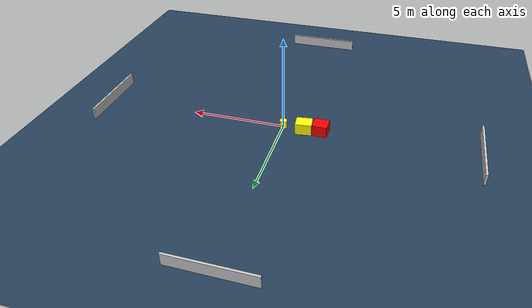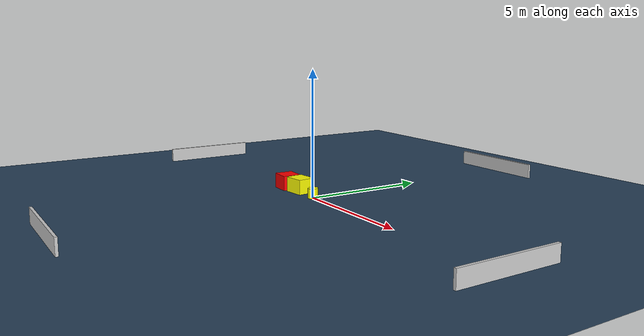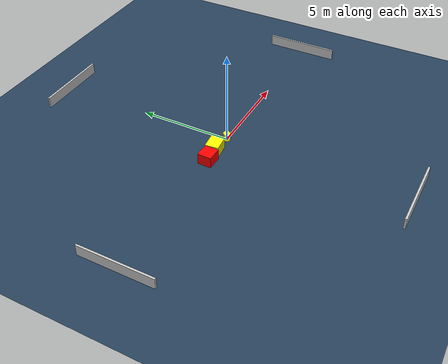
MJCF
<?xml version="1.0" ?>
<mujoco model="generated_environment">
  <option timestep="0.01" integrator="RK4" cone="elliptic"/>
  <default>
    <geom density="1"/>
  </default>
  <asset>
    <texture builtin="gradient" height="3072" name="skybox" rgb1="0.3 0.5 0.7" rgb2="0 0 0" type="skybox" width="512"/>
    <texture builtin="checker" height="300" name="groundplane" rgb1="0.2 0.3 0.4" rgb2="0.1 0.2 0.3" type="2d" width="300"/>
    <material name="groundplane" reflectance="0.2" texrepeat="5 5" texture="groundplane"/>
  </asset>
  <worldbody>
    <light dir="0 0 -1" directional="true" pos="0 0 1.5"/>
    <geom condim="3" friction="0.5 0.005 0.001" material="groundplane" name="floor" pos="0 0 0" size="0 0 0.05" type="plane"/>
    <body name="walls">
      <geom name="wall_1" condim="4" pos="-10.0 0.0 0.3" rgba="0.800000011920929 0.800000011920929 0.800000011920929 1.0" size="0.05 2.0 0.3" type="box"/>
      <geom name="wall_2" condim="4" pos="10.0 0.0 0.3" rgba="0.800000011920929 0.800000011920929 0.800000011920929 1.0" size="0.05 2.0 0.3" type="box"/>
      <geom name="wall_3" condim="4" pos="0.0 -10.0 0.3" rgba="0.800000011920929 0.800000011920929 0.800000011920929 1.0" size="2.0 0.05 0.3" type="box"/>
      <geom name="wall_4" condim="4" pos="0.0 10.0 0.3" rgba="0.800000011920929 0.800000011920929 0.800000011920929 1.0" size="2.0 0.05 0.3" type="box"/>
    </body>
    <body name="robot">
      <joint name="joint_x" type="slide" pos="0 0 0" axis="1 0 0"/>
      <joint name="joint_y" type="slide" pos="0 0 0" axis="0 1 0"/>
      <geom name="robot" type="cylinder" pos="0.0 0.0 0.2" size="0.2 0.2 0.0" mass="5.0" friction="1.0 0.005 0.0001" condim="4" rgba="1.0 1.0 0.0 1.0"/>
    </body>
    <body name="obstacle_1_movable">
      <geom name="obstacle_1_movable" condim="4" pos="-1.1235507475965072 0.09892284355970468 0.3" euler="0 0 186.12730768301643" friction="0.0 0.005 0.001" rgba="1.0 1.0 0.0 1.0" size="0.4255054183771583 0.35499088802597384 0.3" type="box" mass="0.1"/>
      <joint type="free"/>
    </body>
    <body name="obstacle_2_static">
      <geom name="obstacle_2_static" condim="4" pos="-1.9891460627211375 0.01085985586010928 0.3" euler="0 0 267.6220735547406" friction="0.0 0.005 0.001" rgba="1.0 0.0 0.0 1.0" size="0.37269889747473794 0.39081057516221895 0.3" type="box"/>
    </body>
  </worldbody>
  <actuator>
    <motor name="actuator_x" joint="joint_x" gear="1" ctrlrange="-1 1"/>
    <motor name="actuator_y" joint="joint_y" gear="1" ctrlrange="-1 1"/>
  </actuator>
</mujoco>
